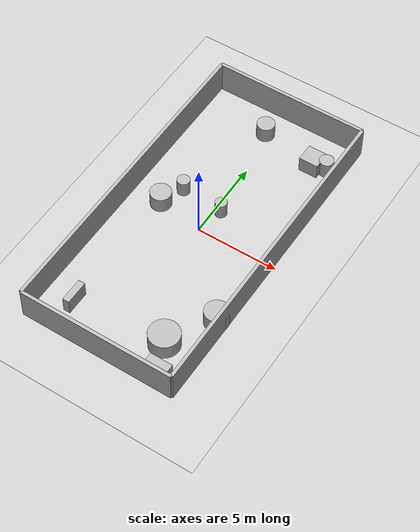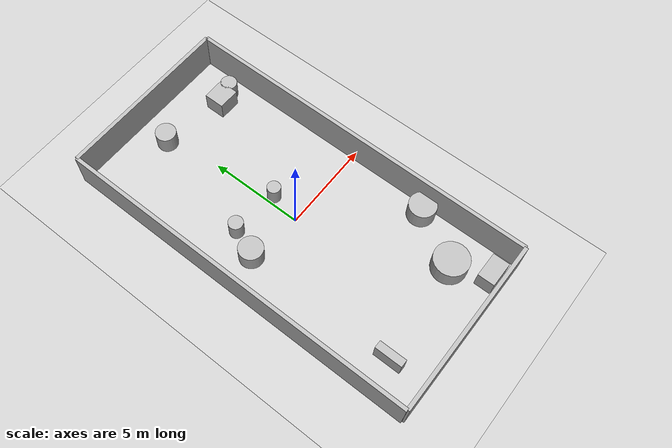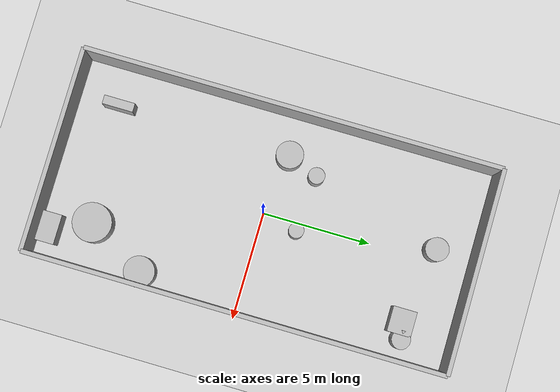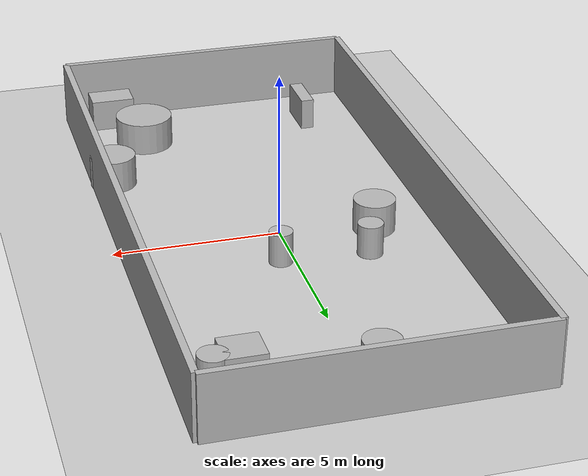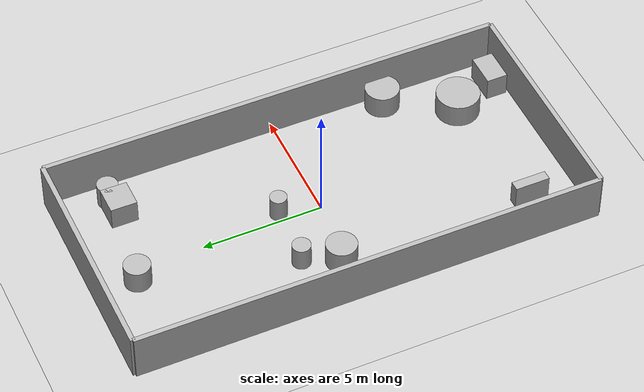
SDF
<?xml version="1.0"?>
<sdf version="1.6">
  <world name="env_92">

    <include><uri>model://ground_plane</uri></include>
    <include><uri>model://sun</uri></include>

    <!-- WALLS -->
    <model name="wall_north"><static>true</static><pose>0 9.670995889609795 1 0 0 0</pose>
      <link name="link"><collision name="collision">
        <geometry><box><size>9.405429814647029 0.2 2</size></box></geometry>
      </collision><visual name="visual">
        <geometry><box><size>9.405429814647029 0.2 2</size></box></geometry>
      </visual></link>
    </model>

    <model name="wall_south"><static>true</static><pose>0 -9.670995889609795 1 0 0 0</pose>
      <link name="link"><collision name="collision">
        <geometry><box><size>9.405429814647029 0.2 2</size></box></geometry>
      </collision><visual name="visual">
        <geometry><box><size>9.405429814647029 0.2 2</size></box></geometry>
      </visual></link>
    </model>

    <model name="wall_east"><static>true</static><pose>4.702714907323514 0 1 0 0 1.57</pose>
      <link name="link"><collision name="collision">
        <geometry><box><size>19.34199177921959 0.2 2</size></box></geometry>
      </collision><visual name="visual">
        <geometry><box><size>19.34199177921959 0.2 2</size></box></geometry>
      </visual></link>
    </model>

    <model name="wall_west"><static>true</static><pose>-4.702714907323514 0 1 0 0 1.57</pose>
      <link name="link"><collision name="collision">
        <geometry><box><size>19.34199177921959 0.2 2</size></box></geometry>
      </collision><visual name="visual">
        <geometry><box><size>19.34199177921959 0.2 2</size></box></geometry>
      </visual></link>
    </model>

    <!-- SENSOR -->

    <model name="lidar_sensor">
      <static>true</static>
      <pose>3.6550476693917044 -5.7734294861858295 0.4 0 0 0</pose>
      <link name="link">
        <sensor name="lidar" type="ray">
          <pose>0 0 0 0 0 0</pose>
          <visualize>true</visualize>
          <always_on>true</always_on>
          <update_rate>10</update_rate>
          <ray>
            <scan><horizontal>
              <samples>240</samples>
              <resolution>1</resolution>
              <min_angle>-3.14159</min_angle>
              <max_angle>3.14159</max_angle>
            </horizontal></scan>
            <range><min>0.15</min><max>20.0</max><resolution>0.01</resolution></range>
          </ray>
          <plugin name="lidar_plugin" filename="liblidar_plugin.so"/>
        </sensor>
      </link>
    </model>

    <!-- OBSTACLES -->

    <model name="obstacle_0">
      <static>true</static>
      <pose>-2.869751546202262 -7.6415594802899545 0.5 0 0 0</pose>
      <link name="link">
        <collision name="collision">
          <geometry><box><size>0.41 1.44 1.0</size></box></geometry>
        </collision>
        <visual name="visual">
          <geometry><box><size>0.41 1.44 1.0</size></box></geometry>
        </visual>
      </link>
    </model>

    <model name="obstacle_1">
      <static>true</static>
      <pose>3.7640723698984946 7.438008942047546 0.5 0 0 0</pose>
      <link name="link">
        <collision name="collision">
          <geometry><cylinder><radius>0.43</radius><length>1.0</length></cylinder></geometry>
        </collision>
        <visual name="visual">
          <geometry><cylinder><radius>0.43</radius><length>1.0</length></cylinder></geometry>
        </visual>
      </link>
    </model>

    <model name="obstacle_2">
      <static>true</static>
      <pose>4.118806895717713 -4.563164630447237 0.5 0 0 0</pose>
      <link name="link">
        <collision name="collision">
          <geometry><cylinder><radius>0.71</radius><length>1.0</length></cylinder></geometry>
        </collision>
        <visual name="visual">
          <geometry><cylinder><radius>0.71</radius><length>1.0</length></cylinder></geometry>
        </visual>
      </link>
    </model>

    <model name="obstacle_3">
      <static>true</static>
      <pose>2.601801055009828 -7.2175524730606515 0.5 0 0 0</pose>
      <link name="link">
        <collision name="collision">
          <geometry><cylinder><radius>0.9</radius><length>1.0</length></cylinder></geometry>
        </collision>
        <visual name="visual">
          <geometry><cylinder><radius>0.9</radius><length>1.0</length></cylinder></geometry>
        </visual>
      </link>
    </model>

    <model name="obstacle_4">
      <static>true</static>
      <pose>-2.7941018370610133 0.4245846578141599 0.5 0 0 0</pose>
      <link name="link">
        <collision name="collision">
          <geometry><cylinder><radius>0.63</radius><length>1.0</length></cylinder></geometry>
        </collision>
        <visual name="visual">
          <geometry><cylinder><radius>0.63</radius><length>1.0</length></cylinder></geometry>
        </visual>
      </link>
    </model>

    <model name="obstacle_5">
      <static>true</static>
      <pose>0.4024041620154337 1.6470894188094878 0.5 0 0 0</pose>
      <link name="link">
        <collision name="collision">
          <geometry><cylinder><radius>0.35</radius><length>1.0</length></cylinder></geometry>
        </collision>
        <visual name="visual">
          <geometry><cylinder><radius>0.35</radius><length>1.0</length></cylinder></geometry>
        </visual>
      </link>
    </model>

    <model name="obstacle_6">
      <static>true</static>
      <pose>2.9742075480508596 7.272256993678404 0.5 0 0 0</pose>
      <link name="link">
        <collision name="collision">
          <geometry><box><size>1.16 1.09 1.0</size></box></geometry>
        </collision>
        <visual name="visual">
          <geometry><box><size>1.16 1.09 1.0</size></box></geometry>
        </visual>
      </link>
    </model>

    <model name="obstacle_7">
      <static>true</static>
      <pose>3.359200052006 -9.024148885735684 0.5 0 0 0</pose>
      <link name="link">
        <collision name="collision">
          <geometry><box><size>1.37 0.88 1.0</size></box></geometry>
        </collision>
        <visual name="visual">
          <geometry><box><size>1.37 0.88 1.0</size></box></geometry>
        </visual>
      </link>
    </model>

    <model name="obstacle_8">
      <static>true</static>
      <pose>-0.5475898631799989 7.912460516990279 0.5 0 0 0</pose>
      <link name="link">
        <collision name="collision">
          <geometry><cylinder><radius>0.54</radius><length>1.0</length></cylinder></geometry>
        </collision>
        <visual name="visual">
          <geometry><cylinder><radius>0.54</radius><length>1.0</length></cylinder></geometry>
        </visual>
      </link>
    </model>

    <model name="obstacle_9">
      <static>true</static>
      <pose>-2.217390759082389 1.8420470588787978 0.5 0 0 0</pose>
      <link name="link">
        <collision name="collision">
          <geometry><cylinder><radius>0.38</radius><length>1.0</length></cylinder></geometry>
        </collision>
        <visual name="visual">
          <geometry><cylinder><radius>0.38</radius><length>1.0</length></cylinder></geometry>
        </visual>
      </link>
    </model>

  </world>
</sdf>
